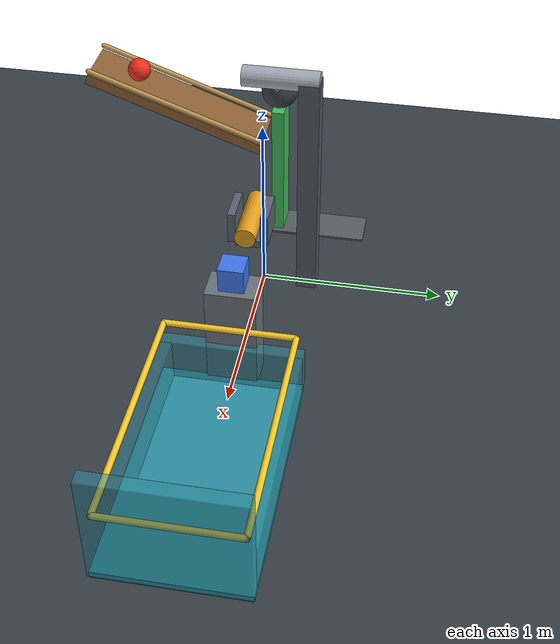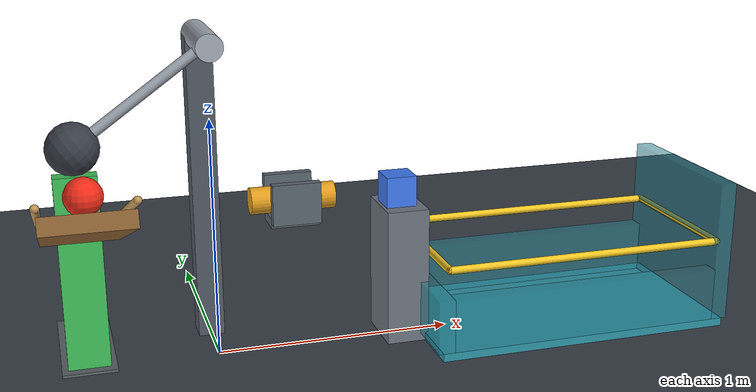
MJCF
<mujoco model="gravity_chain_reaction">
  <compiler angle="radian" autolimits="true"/>
  <option timestep="0.002" gravity="0 0 -9.81" integrator="implicitfast" solver="Newton" iterations="80" cone="elliptic"/>
  <size njmax="2000" nconmax="300"/>
  <visual>
    <global azimuth="135" elevation="-22"/>
    <headlight ambient="0.35 0.35 0.35" diffuse="0.7 0.7 0.7" specular="0.2 0.2 0.2"/>
  </visual>

  <worldbody>
    <light name="overhead" pos="0.5 -1.5 4" dir="0 0 -1" diffuse="0.8 0.8 0.8"/>
    <camera name="overview" pos="3.2 -4.6 2.8" xyaxes="0.84 0.54 0 -0.23 0.36 0.91"/>

    <geom name="floor" type="plane" pos="0 0 0" size="4 3 0.1" friction="0.9 0.01 0.02" condim="6" priority="1" rgba="0.22 0.25 0.28 1"/>

    <!-- The ball's starting contact point is 0.800 m along the ramp from its lower end. -->
    <body name="ramp" pos="-0.5287201 -0.5834576 0.7818402" euler="-0.35 0 0">
      <geom name="ramp_surface" type="box" size="0.15 0.525 0.03" friction="0.65 0.003 0.0001" condim="6" priority="2" rgba="0.55 0.38 0.20 1"/>
      <geom name="ramp_left_rail" type="capsule" fromto="-0.15 -0.525 0.055 -0.15 0.525 0.055" size="0.014" friction="0.4 0.003 0.0001" rgba="0.75 0.59 0.34 1"/>
      <geom name="ramp_right_rail" type="capsule" fromto="0.15 -0.525 0.055 0.15 0.525 0.055" size="0.014" friction="0.4 0.003 0.0001" rgba="0.75 0.59 0.34 1"/>
    </body>

    <body name="ball" pos="-0.5287201 -0.8092068 0.9653775">
      <freejoint name="ball_free"/>
      <geom name="ball_sphere" type="sphere" size="0.065" mass="0.4" friction="0.65 0.005 0.0001" condim="6" solref="0.006 1" rgba="0.95 0.18 0.10 1"/>
    </body>

    <!-- The ball pushes this support sideways, perpendicular to the hammer's swing. -->
    <body name="prop" pos="-0.5287201 0 0.4169060">
      <joint name="prop_slide" type="slide" axis="0 1 0" range="0 0.45" damping="0.035" frictionloss="0.01"/>
      <geom name="prop_support" type="box" size="0.085 0.035 0.4" mass="0.1" friction="0.025 0.001 0.0001" priority="3" solref="0.004 1" rgba="0.25 0.75 0.35 1"/>
    </body>

    <body name="prop_track" pos="-0.5287201 0.225 0.006">
      <geom name="prop_track_base" type="box" size="0.11 0.29 0.006" rgba="0.35 0.38 0.40 1"/>
    </body>

    <body name="hammer_mount" pos="0 0 0">
      <geom name="hammer_mount_column" type="box" pos="0 0.25 0.65" size="0.055 0.055 0.65" rgba="0.32 0.35 0.39 1"/>
      <geom name="hammer_mount_axle" type="cylinder" pos="0 0.1 1.3" euler="1.5707963 0 0" size="0.055 0.20" contype="0" conaffinity="0" rgba="0.65 0.68 0.72 1"/>
    </body>

    <!-- Initially the spherical head rests on the prop. Gravity supplies the swing. -->
    <body name="hammer" pos="0 0 1.3" euler="0 0.95 0">
      <joint name="hammer_hinge" type="hinge" axis="0 1 0" range="-2.2 0.025" damping="0.025" frictionloss="0.002"/>
      <geom name="hammer_arm" type="capsule" fromto="0 0 0 0 0 -0.65" size="0.022" mass="0.04" friction="0.15 0.002 0.0001" rgba="0.62 0.65 0.69 1"/>
      <geom name="hammer_head" type="sphere" pos="0 0 -0.65" size="0.105" mass="0.95" friction="0.12 0.002 0.0001" solref="0.004 1" rgba="0.22 0.24 0.28 1"/>
    </body>

    <!-- The striker initially ends at x=0.50; the payload begins at x=0.715. -->
    <body name="peg" pos="0.325 0 0.65">
      <joint name="peg_slide" type="slide" axis="1 0 0" range="0 0.65" damping="0.03" frictionloss="0.008"/>
      <geom name="peg_striker" type="cylinder" quat="0.70710678 0 0.70710678 0" size="0.055 0.175" mass="0.4" friction="0.15 0.002 0.0001" solref="0.004 1" rgba="0.90 0.63 0.12 1"/>
    </body>

    <!-- Non-colliding bearing covers visualize the ideal slide-joint guide. -->
    <body name="peg_guide" pos="0.325 0 0.65">
      <geom name="peg_guide_left" type="box" pos="0 -0.085 0" size="0.10 0.02 0.085" contype="0" conaffinity="0" rgba="0.36 0.40 0.44 1"/>
      <geom name="peg_guide_right" type="box" pos="0 0.085 0" size="0.10 0.02 0.085" contype="0" conaffinity="0" rgba="0.36 0.40 0.44 1"/>
      <geom name="peg_guide_bottom" type="box" pos="0 0 -0.085" size="0.10 0.065 0.02" contype="0" conaffinity="0" rgba="0.36 0.40 0.44 1"/>
    </body>

    <body name="block_stand" pos="0.79 0 0.2925">
      <geom name="block_stand_platform" type="box" size="0.09 0.13 0.2925" friction="0.18 0.003 0.0001" priority="1" rgba="0.43 0.46 0.50 1"/>
    </body>

    <body name="block" pos="0.78 0 0.65">
      <freejoint name="block_free"/>
      <geom name="block_payload" type="box" size="0.065 0.065 0.065" mass="0.14" friction="0.35 0.005 0.001" condim="6" solref="0.006 1" rgba="0.25 0.48 0.95 1"/>
    </body>

    <!-- A horizontal rectangular hoop lies below the payload's departure height. -->
    <body name="hoop" pos="0 0 0.385">
      <geom name="hoop_near" type="capsule" fromto="0.90 -0.335 0 2.13 -0.335 0" size="0.016" rgba="0.98 0.80 0.15 1"/>
      <geom name="hoop_far" type="capsule" fromto="0.90 0.335 0 2.13 0.335 0" size="0.016" rgba="0.98 0.80 0.15 1"/>
      <geom name="hoop_left" type="capsule" fromto="0.90 -0.335 0 0.90 0.335 0" size="0.016" rgba="0.98 0.80 0.15 1"/>
      <geom name="hoop_right" type="capsule" fromto="2.13 -0.335 0 2.13 0.335 0" size="0.016" rgba="0.98 0.80 0.15 1"/>
    </body>

    <!-- The far wall is taller to retain a payload with excess horizontal speed. -->
    <body name="cup" pos="0 0 0">
      <geom name="cup_bottom" type="box" pos="1.515 0 0.0175" size="0.65 0.37 0.0175" friction="0.85 0.01 0.01" condim="6" priority="2" solref="0.008 1" rgba="0.18 0.58 0.65 1"/>
      <geom name="cup_left_wall" type="box" pos="0.88 0 0.15" size="0.035 0.37 0.115" friction="0.85 0.01 0.01" condim="6" priority="2" rgba="0.18 0.58 0.65 0.55"/>
      <geom name="cup_right_wall" type="box" pos="2.15 0 0.3425" size="0.035 0.37 0.3075" friction="0.85 0.01 0.01" condim="6" priority="2" rgba="0.18 0.58 0.65 0.55"/>
      <geom name="cup_near_wall" type="box" pos="1.515 -0.335 0.15" size="0.60 0.035 0.115" friction="0.85 0.01 0.01" condim="6" priority="2" rgba="0.18 0.58 0.65 0.45"/>
      <geom name="cup_far_wall" type="box" pos="1.515 0.335 0.15" size="0.60 0.035 0.115" friction="0.85 0.01 0.01" condim="6" priority="2" rgba="0.18 0.58 0.65 0.55"/>
    </body>
  </worldbody>

  <keyframe>
    <key name="start" time="0" qpos="-0.5287201 -0.8092068 0.9653775 1 0 0 0 0 0 0 0.78 0 0.65 1 0 0 0"/>
  </keyframe>
</mujoco>
